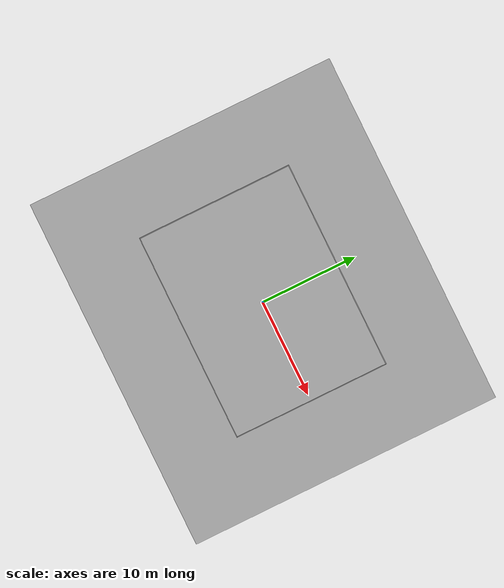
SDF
<sdf version="1.7">
 <world name="cabin">
  <light name="sun" type="directional">
   <pose>0 0 10 0 -0 0</pose>
   <diffuse>0.8 0.8 0.8 1</diffuse>
   <specular>0.2 0.2 0.2 1</specular>
   <attenuation>
    <range>1000</range>
    <constant>0.9</constant>
    <linear>0.01</linear>
    <quadratic>0.001</quadratic>
   </attenuation>
   <direction>-0.5 0.1 -0.9</direction>
   <spot><inner_angle>0</inner_angle><outer_angle>0</outer_angle><falloff>0</falloff></spot>
  </light>
  <gravity>0 0 -9.8</gravity>
  <magnetic_field>6e-06 2.3e-05 -4.2e-05</magnetic_field>
  <atmosphere type="adiabatic"/>
  <physics type="ode">
   <max_step_size>0.001</max_step_size>
   <real_time_factor>1</real_time_factor>
   <real_time_update_rate>1000</real_time_update_rate>
   <ode>
    <solver><type>quick</type><iters>100</iters><sor>1.3</sor></solver>
    <constraints>
     <cfm>0.0</cfm>
     <erp>0.2</erp>
     <contact_max_correcting_vel>10.0</contact_max_correcting_vel>
     <contact_surface_layer>0.002</contact_surface_layer>
    </constraints>
   </ode>
  </physics>
  <scene><ambient>0.4 0.4 0.4 1</ambient><background>0.7 0.7 0.7 1</background><shadows>1</shadows></scene>
  <audio><device>default</device></audio>
  <spherical_coordinates>
   <surface_model>EARTH_WGS84</surface_model>
   <latitude_deg>0</latitude_deg>
   <longitude_deg>0</longitude_deg>
   <elevation>0</elevation>
   <heading_deg>0</heading_deg>
  </spherical_coordinates>
  <model name="cabin">
   <static>1</static>
   <link name="link">
    <collision name="collision">
     <geometry><mesh><scale>1 1 1</scale><uri>../meshes/cabin.dae</uri></mesh></geometry>
     <max_contacts>20</max_contacts>
     <surface>
      <contact>
       <ode>
        <soft_cfm>0.0</soft_cfm>
        <soft_erp>0.2</soft_erp>
        <kp>1e6</kp>
        <kd>100</kd>
        <max_vel>0.1</max_vel>
        <min_depth>0.002</min_depth>
       </ode>
      </contact>
      <bounce><restitution_coefficient>0.0</restitution_coefficient><threshold>1e9</threshold></bounce>
      <friction><ode><mu>1.0</mu><mu2>1.0</mu2></ode></friction>
     </surface>
    </collision>
    <visual name="visual">
     <geometry><mesh><scale>1 1 1</scale><uri>../meshes/cabin.dae</uri></mesh></geometry>
    </visual>
   </link>
  </model>
 </world>
</sdf>
